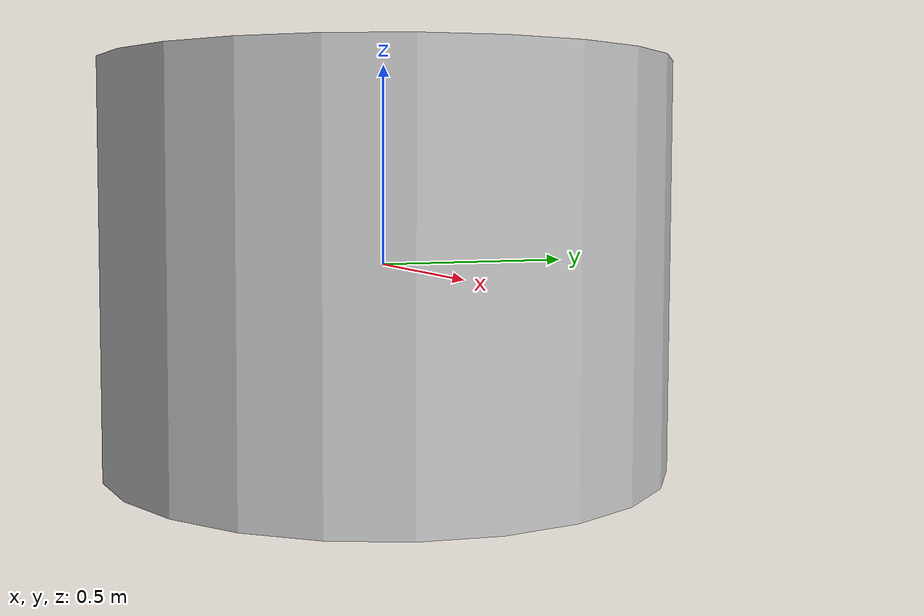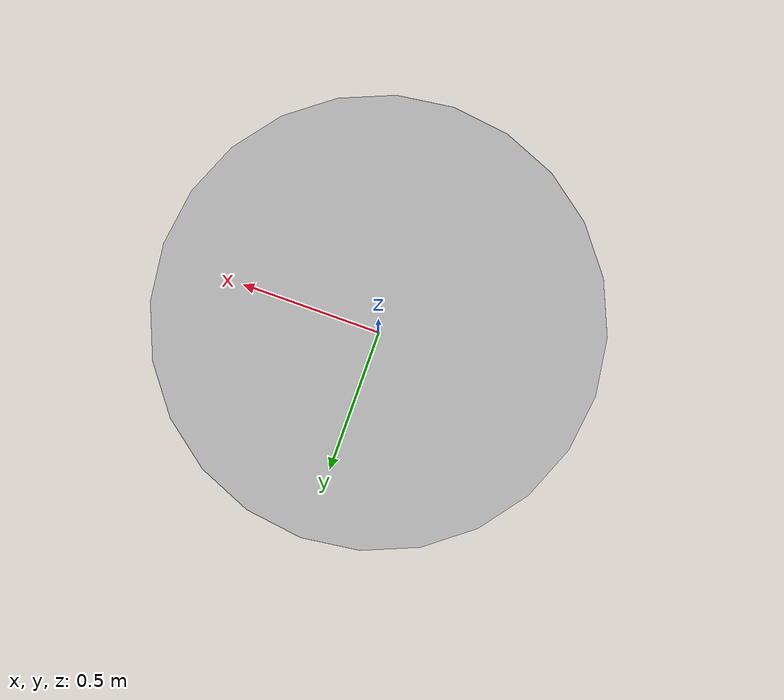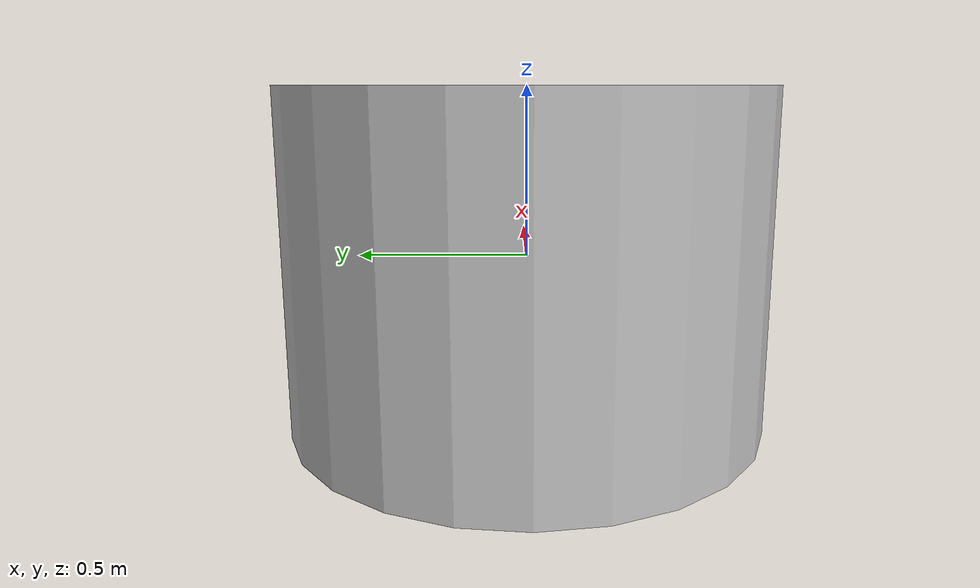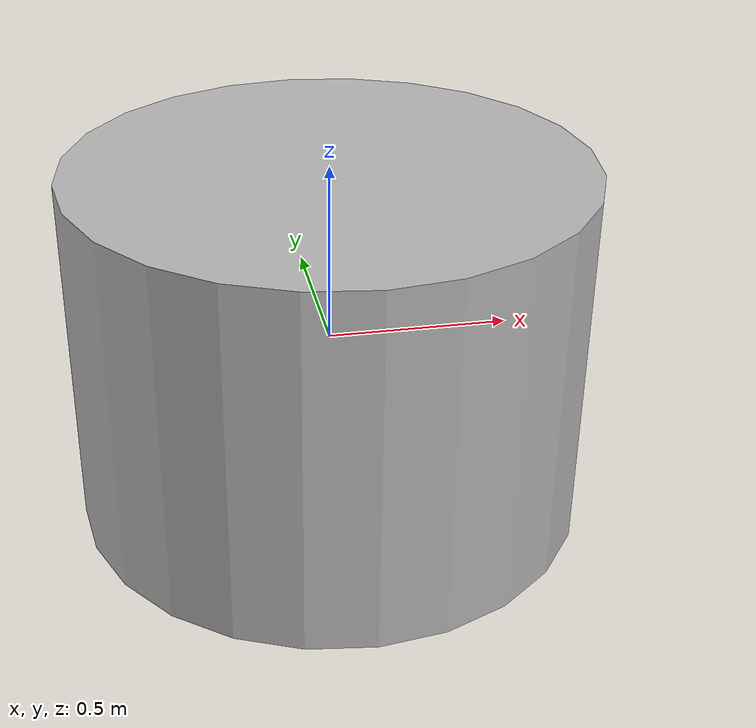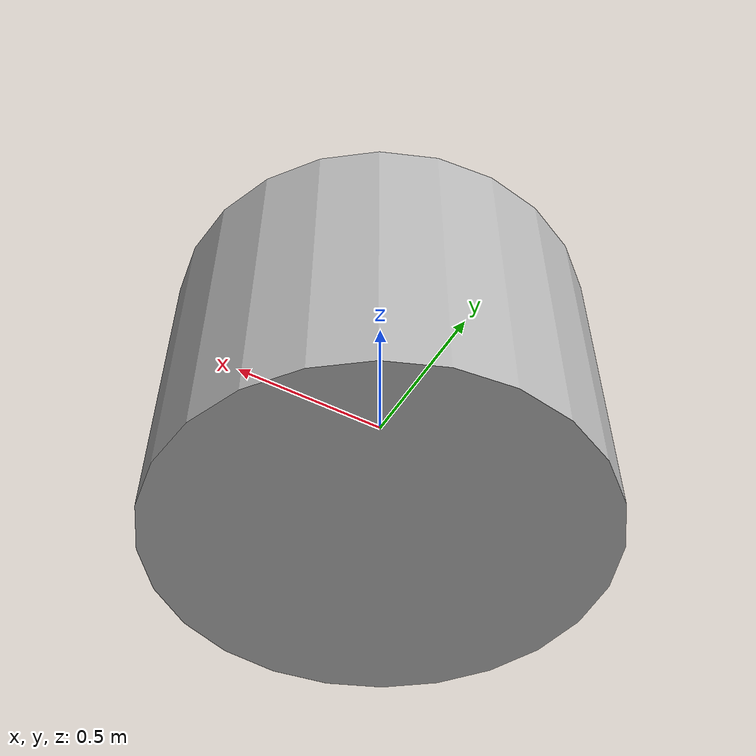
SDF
<sdf version="1.5">
  <model name="cylinder">
    <static>true</static>
    <link name="link">
      <collision name="cylinder_collision">
        <geometry>
          <cylinder>
            <radius>0.7071067811865476</radius>
            <length>1</length>
          </cylinder>
        </geometry>
      </collision>

      <visual name="cylinder_visual">
        <geometry>
          <cylinder>
            <radius>0.7071067811865476</radius>
            <length>1</length>
          </cylinder>
        </geometry>
      </visual>
    </link>
  </model>
</sdf>
